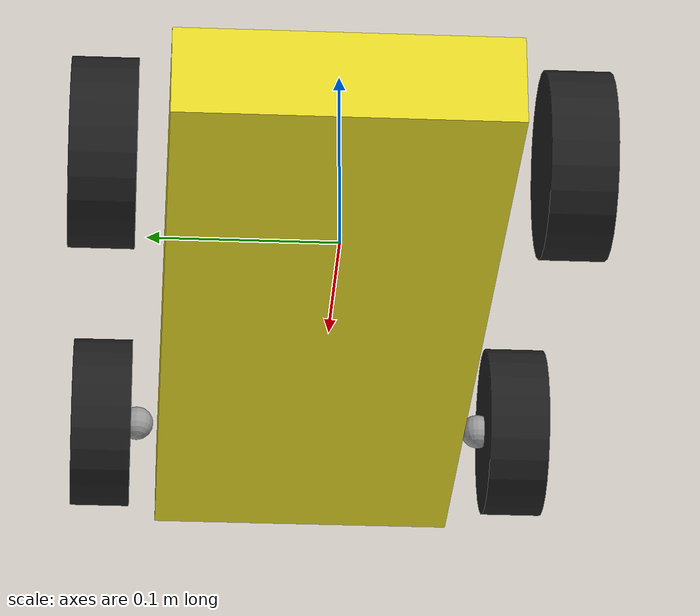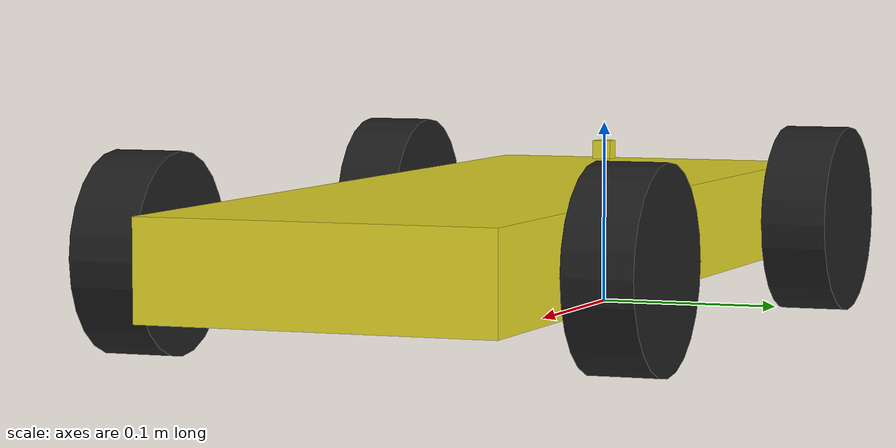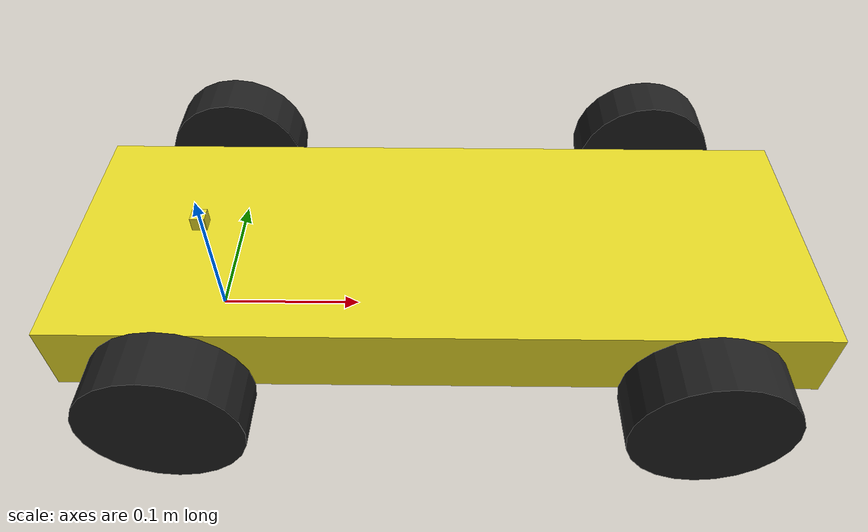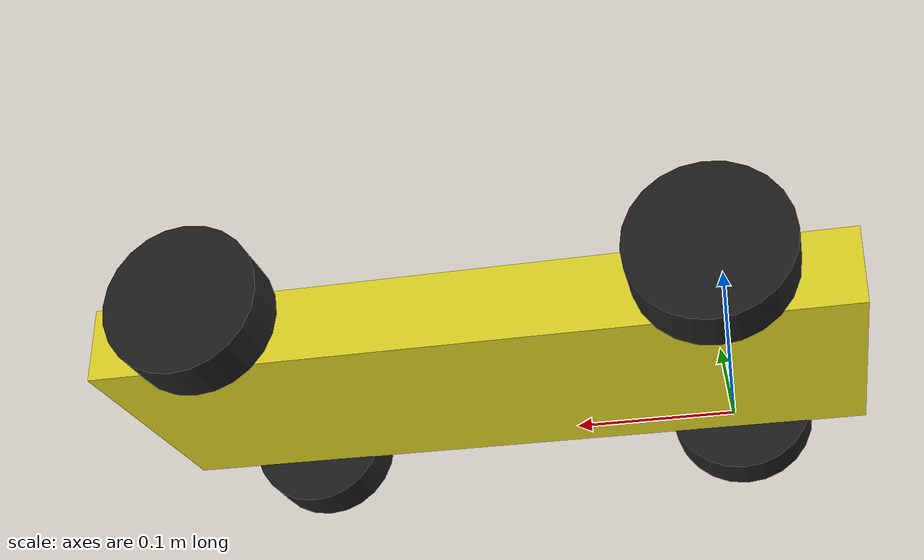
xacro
<?xml version="1.0"?>
<robot xmlns:xacro="http://ros.org/wiki/xacro">

  <xacro:property name="WheelBase" value="0.32" />
  <xacro:property name="WheelLength" value="0.2055" />

  <xacro:property name="ChassisSize_L" value="0.49"/>
  <xacro:property name="ChassisSize_B" value="0.18"/>
  <xacro:property name="ChassisSize_H" value="0.05"/>
  <xacro:property name="ChassisMass" value="3.5"/>

  <xacro:property name="WheelSize_r" value="0.05" />
  <xacro:property name="WheelSize_h" value="0.035" />
  <xacro:property name="WheelMass" value="0.2" />

  <xacro:property name="SteeringSize_r" value="0.01" />
  <xacro:property name="SteeringMass" value="0.07" />

  <xacro:property name="SteeringAnger_deg" value="530.0" />
  <xacro:property name="SteerAnger_deg" value="30.0" />
  <xacro:property name="Speed_m_s" value="10.0" />

  <!-- Wheel macro -->
  <xacro:macro name="wheel" params="fb lr parent translateX translateY left OffsetJointX OffsetJointY OffsetY">
    <link name="${lr}_wheel_${fb}">
      <inertial>
        <mass value="${WheelMass}" />
        <origin xyz="0 ${OffsetY} 0" rpy="${90*pi/180} 0 0"/>
        <xacro:cylinder_inertia  m="${WheelMass}" r="${WheelSize_r}" h="${WheelSize_h}" />
      </inertial>

      <collision>
        <origin xyz="0 ${OffsetY} 0" rpy="${90*pi/180} 0 0 " />
        <geometry>
          <cylinder length="${WheelSize_h}" radius="${WheelSize_r}" />
        </geometry>
      </collision>

      <visual>
        <origin xyz="0 ${OffsetY} 0" rpy="${90*pi/180} 0 ${left*pi}" />
        <geometry>
          <cylinder length="${WheelSize_h}" radius="${WheelSize_r}" />
        </geometry>
        <material name="black"/>
      </visual>
    </link>

    <joint name="${lr}_wheel_${fb}_hinge" type="continuous">
      <parent link="${parent}"/>
      <child link="${lr}_wheel_${fb}"/>
      <origin xyz="${translateX * OffsetJointX} ${translateY * OffsetJointY} 0.0" rpy="0 0 0" />
      <axis xyz="0 1 0" rpy="0 0 0" />
      <limit effort="20" velocity="500"/>
      <joint_properties damping="1e-9" friction="1e-9"/>
    </joint>

    <transmission name="${lr}_wheel_${fb}_transmission" type="SimpleTransmission">
      <type>transmission_interface/SimpleTransmission</type>
      <joint name="${lr}_wheel_${fb}_hinge">
        <hardwareInterface>hardware_interface/EffortJointInterface</hardwareInterface>
      </joint>
      <actuator name="${lr}_wheel_${fb}_motor">
        <hardwareInterface>hardware_interface/EffortJointInterface</hardwareInterface>
        <mechanicalReduction>1</mechanicalReduction>
      </actuator>
    </transmission>

    <gazebo reference="${lr}_wheel_${fb}">
      <material>Gazebo/Black</material>
      <mu1>0.9</mu1>
      <mu2>0.9</mu2>
    </gazebo>
  </xacro:macro>

  <!-- Steering macro -->
  <xacro:macro name="steering_hinge" params="lr parent translateY OffsetY">
    <link name="${lr}_steering">
      <inertial>
        <mass value="${SteeringMass}" />
        <origin xyz="0 0 0" rpy="0 0 0"/>
        <xacro:sphere_inertia  m="${SteeringMass}" r="${SteeringSize_r}" />
      </inertial>

      <visual>
        <origin xyz="0 0 0" rpy="0 0 0" />
        <geometry>
          <sphere radius="${SteeringSize_r}"/>
        </geometry>
      </visual>
    </link>

    <gazebo reference="${lr}_steering">
      <material>Gazebo/Grey</material>
    </gazebo>

    <joint name="${lr}_steering_hinge" type="revolute">
      <origin xyz="${WheelBase/2} ${translateY * WheelLength/2} 0" rpy="0 0 0" />
      <parent link="${parent}" />
      <child link="${lr}_steering" />
      <axis xyz="0 0 1" />
      <limit lower="${-1*SteerAnger_deg*pi/180}" upper="${SteerAnger_deg*pi/180}" effort="10" velocity="100" />
    </joint>

    <transmission name="${lr}_steering_hinge_transmission" type="SimpleTransmission">
      <type>transmission_interface/SimpleTransmission</type>
      <joint name="${lr}_steering_hinge">
        <hardwareInterface>hardware_interface/EffortJointInterface</hardwareInterface>
      </joint>
      <actuator name="${lr}_steering_hinge_motor">
        <hardwareInterface>hardware_interface/EffortJointInterface</hardwareInterface>
        <mechanicalReduction>1</mechanicalReduction>
      </actuator>
    </transmission>
  </xacro:macro>

  <!--  Base Link  -->
  <link name="base_link" />

  <!--  Chassis  -->
  <joint name="base_link_joint" type="fixed">
    <origin xyz="${WheelBase/2} 0 ${WheelSize_r}" rpy="0 0 0" />
    <parent link="base_link" />
    <child link="chassis" />
  </joint>

  <link name='chassis'>
    <inertial>
      <mass value="${ChassisMass}"/>
      <origin xyz="0 0 0" rpy=" 0 0 0"/>
      <xacro:box_inertia m="${ChassisMass}" l="${ChassisSize_L}" b="${ChassisSize_B}" h="${ChassisSize_H}" />
    </inertial>

    <collision name='collision'>
      <origin xyz="0 0 0" rpy=" 0 0 0"/>
      <geometry>
        <box size="${ChassisSize_L} ${ChassisSize_B} ${ChassisSize_H}"/>
      </geometry>
    </collision>

    <visual>
      <origin xyz="0 0 0" rpy=" 0 0 0"/>
      <geometry>
        <box size="${ChassisSize_L} ${ChassisSize_B} ${ChassisSize_H}"/>
      </geometry>
      <material name="yellow"/>
    </visual>
  </link>

  <gazebo reference="chassis">
    <material>Gazebo/Yellow</material>
  </gazebo>

  <!--  Steering wheel  -->
  <joint name="steering_wheel_joint" type="continuous">
    <origin xyz="${-1*WheelBase/2} 0 ${ChassisSize_H/2 + 0.01}" rpy="0 0 0" />
    <parent link="chassis" />
    <child link="steering_wheel" />
    <axis xyz="1 0 0" />
    <limit lower="${-1*SteeringAnger_deg*pi/180}" upper="${SteeringAnger_deg*pi/180}" effort="10000000" velocity="1000000"/>
  </joint>

  <link name='steering_wheel'>
    <inertial>
      <mass value="0.1"/>
      <xacro:box_inertia m="0.1" l="0.01" b="0.01" h="0.01" />
    </inertial>
    <collision name='collision'>
      <geometry>
        <box size="0.01 0.01 0.01"/>
      </geometry>
    </collision>
    <visual>
      <origin xyz="0 0 0" rpy=" 0 0 0"/>
      <geometry>
        <box size="0.01 0.01 0.01"/>
      </geometry>
      <material name="yellow"/>
    </visual>
  </link>

  <gazebo reference="steering_wheel">
    <material>Gazebo/Yellow</material>
  </gazebo>

  <!--  Wheels  -->
  <xacro:wheel fb="front" lr="left" parent="left_steering"
    translateX="1" translateY="1" left="1"
    OffsetJointX= "0" OffsetJointY= "0.001" OffsetY="0.02" />

  <xacro:wheel fb="front" lr="right" parent="right_steering"
    translateX="1" translateY="-1" left="0"
    OffsetJointX= "0" OffsetJointY= "0.001" OffsetY="-0.02" />

  <xacro:wheel fb="back" lr="left" parent="chassis"
    translateX="-1" translateY="1" left="1"
    OffsetJointX= "${WheelBase/2}" OffsetJointY= "${WheelLength/2}" OffsetY="0.021" />

  <xacro:wheel fb="back" lr="right" parent="chassis"
    translateX="-1" translateY="-1" left="0"
    OffsetJointX= "${WheelBase/2}" OffsetJointY= "${WheelLength/2}" OffsetY="-0.021" />

  <!--  Steering  -->
  <xacro:steering_hinge lr="left" parent="chassis" translateY="1" OffsetY="0.02" />
  <xacro:steering_hinge lr="right" parent="chassis" translateY="-1" OffsetY="-0.02" />

  <!-- Plugins -->

  <!-- Ackermann drive -->
  <gazebo>
    <plugin name='ackermann_drive' filename='libgazebo_ros_ackermann_drive.so'>
      <update_rate>100.0</update_rate>

      <!-- wheels -->
      <front_left_joint>left_wheel_front_hinge</front_left_joint>
      <front_right_joint>right_wheel_front_hinge</front_right_joint>
      <rear_left_joint>left_wheel_back_hinge</rear_left_joint>
      <rear_right_joint>right_wheel_back_hinge</rear_right_joint>
      <left_steering_joint>left_steering_hinge</left_steering_joint>
      <right_steering_joint>right_steering_hinge</right_steering_joint>
      <steering_wheel_joint>steering_wheel_joint</steering_wheel_joint>

      <!-- Max absolute steer angle for tyre in radians-->
      <!-- Any cmd_vel angular z greater than this would be capped -->
      <max_steer>${SteerAnger_deg*pi/180}</max_steer>

      <!-- Max absolute steering angle of steering wheel -->
      <max_steering_angle>${SteeringAnger_deg*pi/180}</max_steering_angle>

      <!-- Max absolute linear speed in m/s -->
      <max_speed>${Speed_m_s}</max_speed>

      <left_steering_pid_gain>5 0 0.3</left_steering_pid_gain>
      <left_steering_i_range>0 0</left_steering_i_range>
      <right_steering_pid_gain>5 0 0.3</right_steering_pid_gain>
      <right_steering_i_range>0 0</right_steering_i_range>
      <linear_velocity_pid_gain>0.5 0 0</linear_velocity_pid_gain>
      <linear_velocity_i_range>0 0</linear_velocity_i_range>

      <!-- output -->
      <publish_odom>true</publish_odom>
      <publish_odom_tf>true</publish_odom_tf>
      <publish_wheel_tf>false</publish_wheel_tf>
      <publish_distance>true</publish_distance>

      <odometry_frame>odom</odometry_frame>
      <robot_base_frame>base_link</robot_base_frame>

      <ros>
        <argument>--ros-args --remap cmd_vel:=cmd_vel</argument>
        <argument>--ros-args --remap odom:=odom</argument>
        <argument>--ros-args --remap distance:=distance</argument>
        <remapping>/tf:=tf</remapping>
      </ros>

    </plugin>
  </gazebo>

  <gazebo>
    <plugin name="robot_joint_state" filename="libgazebo_ros_joint_state_publisher.so">
      <ros>
        <remapping>~/out:=joint_states</remapping>
      </ros>
      <update_rate>100</update_rate>
      <joint_name>left_wheel_front_hinge</joint_name>
      <joint_name>right_wheel_front_hinge</joint_name>
      <joint_name>left_wheel_back_hinge</joint_name>
      <joint_name>right_wheel_back_hinge</joint_name>
      <joint_name>left_steering_hinge</joint_name>
      <joint_name>right_steering_hinge</joint_name>
      <joint_name>steering_wheel_joint</joint_name>
    </plugin>
  </gazebo>

</robot>
